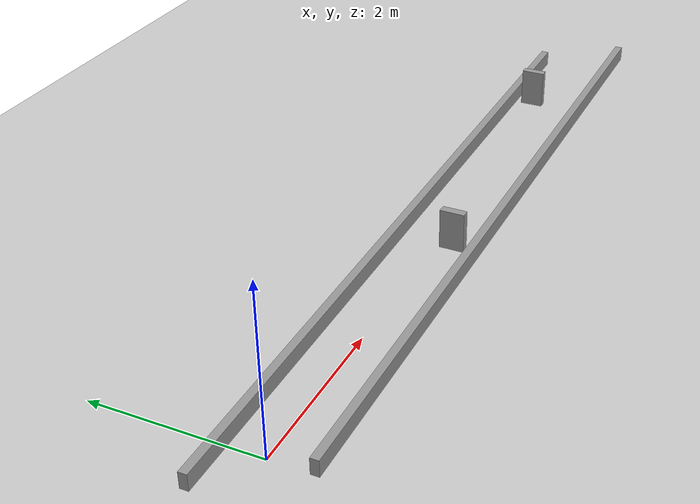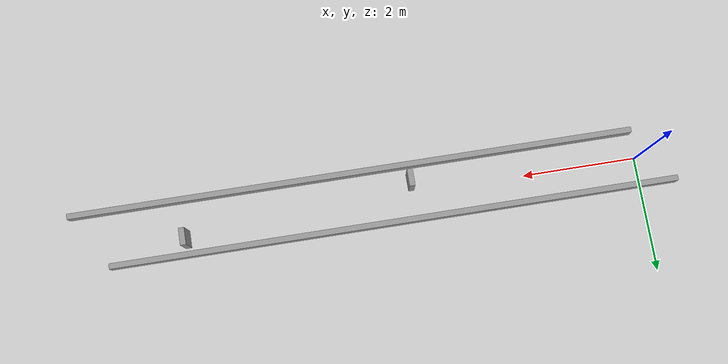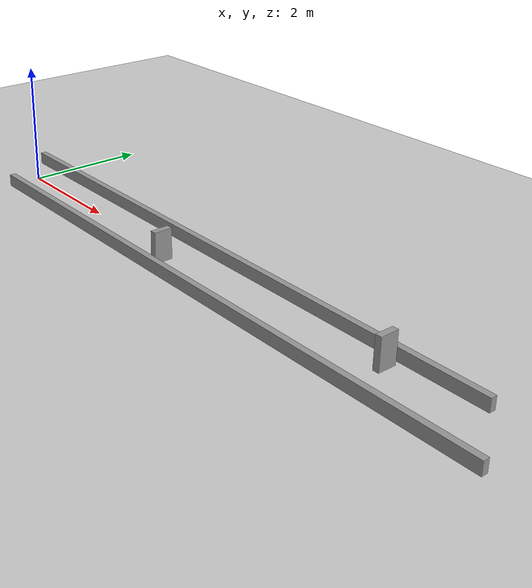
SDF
<sdf version="1.7">
 <world name="default">
  <light name="sun" type="directional">
   <pose>0 0 10 0 -0 0</pose>
   <diffuse>0.8 0.8 0.8 1</diffuse>
   <specular>0.2 0.2 0.2 1</specular>
   <attenuation>
    <range>1000</range>
    <constant>0.9</constant>
    <linear>0.01</linear>
    <quadratic>0.001</quadratic>
   </attenuation>
   <direction>-0.5 0.1 -0.9</direction>
   <spot><inner_angle>0</inner_angle><outer_angle>0</outer_angle><falloff>0</falloff></spot>
  </light>
  <model name="ground_plane">
   <pose>4 0 0 0 -0 0</pose>
   <static>1</static>
   <link name="link">
    <collision name="collision">
     <geometry><plane><normal>0 0 1</normal><size>100 100</size></plane></geometry>
     <surface>
      <contact><collide_bitmask>65535</collide_bitmask></contact>
      <friction><ode><mu>100</mu><mu2>50</mu2></ode></friction>
     </surface>
    </collision>
    <visual name="visual">
     <cast_shadows>0</cast_shadows>
     <geometry><plane><normal>0 0 1</normal><size>100 100</size></plane></geometry>
     <material>
      <script><uri>file://media/materials/scripts/gazebo.material</uri><name>Gazebo/Grey</name></script>
     </material>
    </visual>
   </link>
  </model>
  <gravity>0 0 -9.8</gravity>
  <magnetic_field>6e-06 2.3e-05 -4.2e-05</magnetic_field>
  <atmosphere type="adiabatic"/>
  <physics type="ode">
   <max_step_size>0.001</max_step_size>
   <real_time_factor>1</real_time_factor>
   <real_time_update_rate>1000</real_time_update_rate>
  </physics>
  <scene><ambient>0.4 0.4 0.4 1</ambient><background>0.7 0.7 0.7 1</background><shadows>1</shadows></scene>
  <spherical_coordinates>
   <surface_model>EARTH_WGS84</surface_model>
   <latitude_deg>0</latitude_deg>
   <longitude_deg>0</longitude_deg>
   <elevation>0</elevation>
   <heading_deg>0</heading_deg>
  </spherical_coordinates>
  <model name="unit_box">
   <link name="link">
    <inertial>
     <mass>1</mass>
     <inertia>
      <ixx>0.166667</ixx>
      <ixy>0</ixy>
      <ixz>0</ixz>
      <iyy>0.166667</iyy>
      <iyz>0</iyz>
      <izz>0.166667</izz>
     </inertia>
    </inertial>
    <visual name="visual">
     <geometry><box><size>0.1 0.3 0.5</size></box></geometry>
     <material>
      <script><name>Gazebo/Grey</name><uri>file://media/materials/scripts/gazebo.material</uri></script>
      <shader type="pixel"><normal_map>__default__</normal_map></shader>
      <ambient>0.3 0.3 0.3 1</ambient>
      <diffuse>0.7 0.7 0.7 1</diffuse>
      <specular>0.01 0.01 0.01 1</specular>
      <emissive>0 0 0 1</emissive>
     </material>
    </visual>
    <collision name="collision">
     <geometry><box><size>0.1 0.1 0.5</size></box></geometry>
     <surface>
      <friction>
       <ode><mu>1</mu><mu2>1</mu2><fdir1>0 0 0</fdir1><slip1>0</slip1><slip2>0</slip2></ode>
       <torsional>
        <coefficient>1</coefficient>
        <patch_radius>0</patch_radius>
        <surface_radius>0</surface_radius>
        <use_patch_radius>1</use_patch_radius>
        <ode><slip>0</slip></ode>
       </torsional>
      </friction>
      <bounce><restitution_coefficient>0</restitution_coefficient><threshold>1e+06</threshold></bounce>
      <contact>
       <collide_without_contact>0</collide_without_contact>
       <collide_without_contact_bitmask>1</collide_without_contact_bitmask>
       <collide_bitmask>1</collide_bitmask>
       <ode>
        <soft_cfm>0</soft_cfm>
        <soft_erp>0.2</soft_erp>
        <kp>1e+13</kp>
        <kd>1</kd>
        <max_vel>0.01</max_vel>
        <min_depth>0</min_depth>
       </ode>
       <bullet>
        <split_impulse>1</split_impulse>
        <split_impulse_penetration_threshold>-0.01</split_impulse_penetration_threshold>
        <soft_cfm>0</soft_cfm>
        <soft_erp>0.2</soft_erp>
        <kp>1e+13</kp>
        <kd>1</kd>
       </bullet>
      </contact>
     </surface>
    </collision>
   </link>
   <static>0</static>
   <pose>4 -0.200001 0.25 -0 -3e-06 0.000263</pose>
  </model>
  <model name="unit_box_clone">
   <link name="link">
    <inertial>
     <mass>1</mass>
     <inertia>
      <ixx>0.166667</ixx>
      <ixy>0</ixy>
      <ixz>0</ixz>
      <iyy>0.166667</iyy>
      <iyz>0</iyz>
      <izz>0.166667</izz>
     </inertia>
    </inertial>
    <visual name="visual">
     <geometry><box><size>0.1 0.3 0.5</size></box></geometry>
     <material>
      <script><name>Gazebo/Grey</name><uri>file://media/materials/scripts/gazebo.material</uri></script>
      <shader type="pixel"><normal_map>__default__</normal_map></shader>
      <ambient>0.3 0.3 0.3 1</ambient>
      <diffuse>0.7 0.7 0.7 1</diffuse>
      <specular>0.01 0.01 0.01 1</specular>
      <emissive>0 0 0 1</emissive>
     </material>
    </visual>
    <collision name="collision">
     <geometry><box><size>0.1 0.1 0.5</size></box></geometry>
     <surface>
      <friction>
       <ode><mu>1</mu><mu2>1</mu2><fdir1>0 0 0</fdir1><slip1>0</slip1><slip2>0</slip2></ode>
       <torsional>
        <coefficient>1</coefficient>
        <patch_radius>0</patch_radius>
        <surface_radius>0</surface_radius>
        <use_patch_radius>1</use_patch_radius>
        <ode><slip>0</slip></ode>
       </torsional>
      </friction>
      <bounce><restitution_coefficient>0</restitution_coefficient><threshold>1e+06</threshold></bounce>
      <contact>
       <collide_without_contact>0</collide_without_contact>
       <collide_without_contact_bitmask>1</collide_without_contact_bitmask>
       <collide_bitmask>1</collide_bitmask>
       <ode>
        <soft_cfm>0</soft_cfm>
        <soft_erp>0.2</soft_erp>
        <kp>1e+13</kp>
        <kd>1</kd>
        <max_vel>0.01</max_vel>
        <min_depth>0</min_depth>
       </ode>
       <bullet>
        <split_impulse>1</split_impulse>
        <split_impulse_penetration_threshold>-0.01</split_impulse_penetration_threshold>
        <soft_cfm>0</soft_cfm>
        <soft_erp>0.2</soft_erp>
        <kp>1e+13</kp>
        <kd>1</kd>
       </bullet>
      </contact>
     </surface>
    </collision>
   </link>
   <static>0</static>
   <pose>8 0.199999 0.249991 -4e-06 1e-06 0.000144</pose>
  </model>
  <model name="L">
   <link name="link">
    <inertial>
     <mass>1</mass>
     <inertia>
      <ixx>0.166667</ixx>
      <ixy>0</ixy>
      <ixz>0</ixz>
      <iyy>0.166667</iyy>
      <iyz>0</iyz>
      <izz>0.166667</izz>
     </inertia>
    </inertial>
    <visual name="visual">
     <geometry><box><size>10 0.1 0.2</size></box></geometry>
     <material>
      <script><name>Gazebo/Grey</name><uri>file://media/materials/scripts/gazebo.material</uri></script>
      <shader type="pixel"><normal_map>__default__</normal_map></shader>
      <ambient>0.3 0.3 0.3 1</ambient>
      <diffuse>0.7 0.7 0.7 1</diffuse>
      <specular>0.01 0.01 0.01 1</specular>
      <emissive>0 0 0 1</emissive>
     </material>
    </visual>
    <collision name="collision">
     <geometry><box><size>10 0.1 0.2</size></box></geometry>
     <surface>
      <friction>
       <ode><mu>1</mu><mu2>1</mu2><fdir1>0 0 0</fdir1><slip1>0</slip1><slip2>0</slip2></ode>
       <torsional>
        <coefficient>1</coefficient>
        <patch_radius>0</patch_radius>
        <surface_radius>0</surface_radius>
        <use_patch_radius>1</use_patch_radius>
        <ode><slip>0</slip></ode>
       </torsional>
      </friction>
      <bounce><restitution_coefficient>0</restitution_coefficient><threshold>1e+06</threshold></bounce>
      <contact>
       <collide_without_contact>0</collide_without_contact>
       <collide_without_contact_bitmask>1</collide_without_contact_bitmask>
       <collide_bitmask>1</collide_bitmask>
       <ode>
        <soft_cfm>0</soft_cfm>
        <soft_erp>0.2</soft_erp>
        <kp>1e+13</kp>
        <kd>1</kd>
        <max_vel>0.01</max_vel>
        <min_depth>0</min_depth>
       </ode>
       <bullet>
        <split_impulse>1</split_impulse>
        <split_impulse_penetration_threshold>-0.01</split_impulse_penetration_threshold>
        <soft_cfm>0</soft_cfm>
        <soft_erp>0.2</soft_erp>
        <kp>1e+13</kp>
        <kd>1</kd>
       </bullet>
      </contact>
     </surface>
    </collision>
   </link>
   <static>0</static>
   <pose>5 -0.5 0.1 2e-06 0 -8.8e-05</pose>
  </model>
  <model name="L_clone">
   <link name="link">
    <inertial>
     <mass>1</mass>
     <inertia>
      <ixx>0.166667</ixx>
      <ixy>0</ixy>
      <ixz>0</ixz>
      <iyy>0.166667</iyy>
      <iyz>0</iyz>
      <izz>0.166667</izz>
     </inertia>
    </inertial>
    <visual name="visual">
     <geometry><box><size>10 0.1 0.2</size></box></geometry>
     <material>
      <script><name>Gazebo/Grey</name><uri>file://media/materials/scripts/gazebo.material</uri></script>
      <shader type="pixel"><normal_map>__default__</normal_map></shader>
      <ambient>0.3 0.3 0.3 1</ambient>
      <diffuse>0.7 0.7 0.7 1</diffuse>
      <specular>0.01 0.01 0.01 1</specular>
      <emissive>0 0 0 1</emissive>
     </material>
    </visual>
    <collision name="collision">
     <geometry><box><size>10 0.1 0.2</size></box></geometry>
     <surface>
      <friction>
       <ode><mu>1</mu><mu2>1</mu2><fdir1>0 0 0</fdir1><slip1>0</slip1><slip2>0</slip2></ode>
       <torsional>
        <coefficient>1</coefficient>
        <patch_radius>0</patch_radius>
        <surface_radius>0</surface_radius>
        <use_patch_radius>1</use_patch_radius>
        <ode><slip>0</slip></ode>
       </torsional>
      </friction>
      <bounce><restitution_coefficient>0</restitution_coefficient><threshold>1e+06</threshold></bounce>
      <contact>
       <collide_without_contact>0</collide_without_contact>
       <collide_without_contact_bitmask>1</collide_without_contact_bitmask>
       <collide_bitmask>1</collide_bitmask>
       <ode>
        <soft_cfm>0</soft_cfm>
        <soft_erp>0.2</soft_erp>
        <kp>1e+13</kp>
        <kd>1</kd>
        <max_vel>0.01</max_vel>
        <min_depth>0</min_depth>
       </ode>
       <bullet>
        <split_impulse>1</split_impulse>
        <split_impulse_penetration_threshold>-0.01</split_impulse_penetration_threshold>
        <soft_cfm>0</soft_cfm>
        <soft_erp>0.2</soft_erp>
        <kp>1e+13</kp>
        <kd>1</kd>
       </bullet>
      </contact>
     </surface>
    </collision>
   </link>
   <static>0</static>
   <pose>4.3653 0.475534 0.1 2e-06 0 -8.8e-05</pose>
  </model>
 </world>
</sdf>
